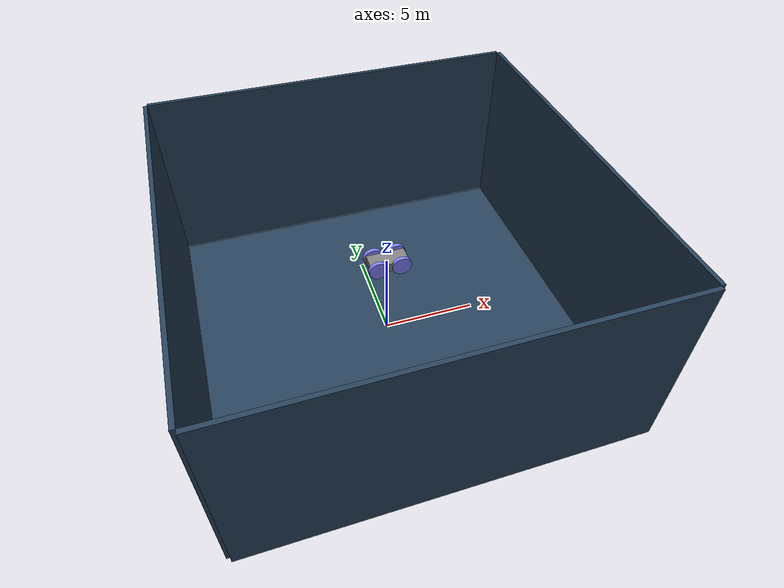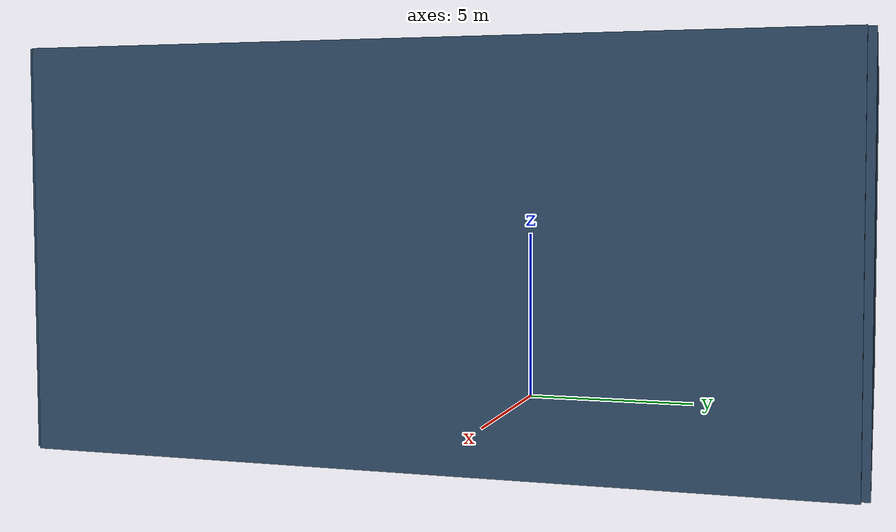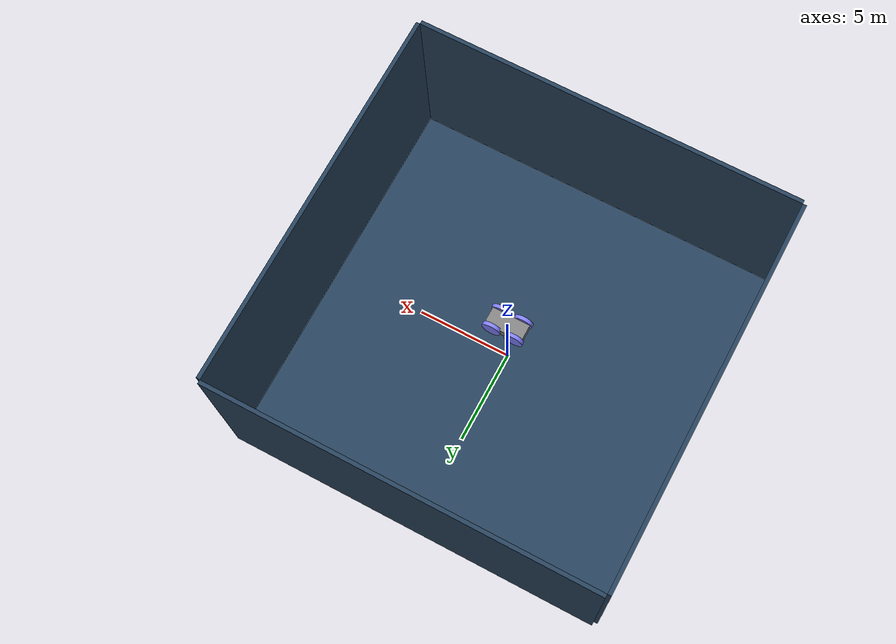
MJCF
<mujoco>
	<worldbody>
		<light dir="0 0 -1" pos="0 0 1000" diffuse="1 1 1" />
		<geom name="ground_bottom" type="plane" size="10.0 10.0 0.1" material="grid" friction="1.0 0.005 0.0001" />
		<geom name="ground_left" type="box" size="0.1 10.0 5.0" pos="-10.1 0 5.0" material="grid" />
		<geom name="ground_right" type="box" size="0.1 10.0 5.0" pos="10.1 0 5.0" material="grid" />
		<geom name="ground_front" type="box" size="10.0 0.1 5.0" pos="0 10.1 5.0" material="grid" />
		<geom name="ground_back" type="box" size="10.0 0.1 5.0" pos="0 -10.1 5.0" material="grid" />
		<camera name="TopDownCam" pos="0 0 9.999999999999998" euler="0 0 -90" fovy="90" />
		<body name="car1" pos="0 0 5">
			<freejoint />
			<body name="car1_front_lights" pos="1.0 0 0" />
			<body name="car1_chassis">
				<geom name="car1_chassis_geom" type="box" size="1.0 0.5 0.25" mass="1500" />
				<body name="car1_wheel1" pos="0.6 -0.5 0.0" zaxis="0 1 0">
					<joint name="car1_wheel1_joint_steer" type="hinge" axis="0 1 0" limited="true" range="-45 45" />
					<joint name="car1_wheel1_joint_roll" />
					<geom type="cylinder" size="0.5 0.1" rgba=".5 .5 1 1" mass="30" friction="1 0.001 0.001" />
				</body>
				<body name="car1_wheel2" pos="0.6 0.5 0.0" zaxis="0 1 0">
					<joint name="car1_wheel2_joint_steer" type="hinge" axis="0 1 0" limited="true" range="-45 45" />
					<joint name="car1_wheel2_joint_roll" />
					<geom type="cylinder" size="0.5 0.1" rgba=".5 .5 1 1" mass="30" friction="1 0.001 0.001" />
				</body>
				<body name="car1_wheel3" pos="-0.6 -0.5 0.0" zaxis="0 1 0">
					<joint name="car1_wheel3_joint_roll" />
					<geom type="cylinder" size="0.5 0.1" rgba=".5 .5 1 1" mass="30" friction="1 0.001 0.001" />
				</body>
				<body name="car1_wheel4" pos="-0.6 0.5 0.0" zaxis="0 1 0">
					<joint name="car1_wheel4_joint_roll" />
					<geom type="cylinder" size="0.5 0.1" rgba=".5 .5 1 1" mass="30" friction="1 0.001 0.001" />
				</body>
			</body>
		</body>
	</worldbody>
	<asset>
		<texture name="grid" type="2d" builtin="checker" width="512" height="512" rgb1=".1 .2 .3" rgb2=".2 .3 .4" />
		<material name="grid" texture="grid" texrepeat="1 1" texuniform="true" reflectance="0" />
	</asset>
	<tendon>
		<fixed name="car1_back_wheels_tendon">
			<joint joint="car1_wheel3_joint_roll" coef="1000" />
			<joint joint="car1_wheel4_joint_roll" coef="1000" />
		</fixed>
	</tendon>
	<actuator>
		<motor name="car1_engine_power" tendon="car1_back_wheels_tendon" ctrlrange="-1 1" />
		<position name="car1_wheel1_angle" joint="car1_wheel1_joint_steer" kp="1000" ctrlrange="-0.7853981633974483 0.7853981633974483" />
		<position name="car1_wheel2_angle" joint="car1_wheel2_joint_steer" kp="1000" ctrlrange="-0.7853981633974483 0.7853981633974483" />
	</actuator>
</mujoco>
